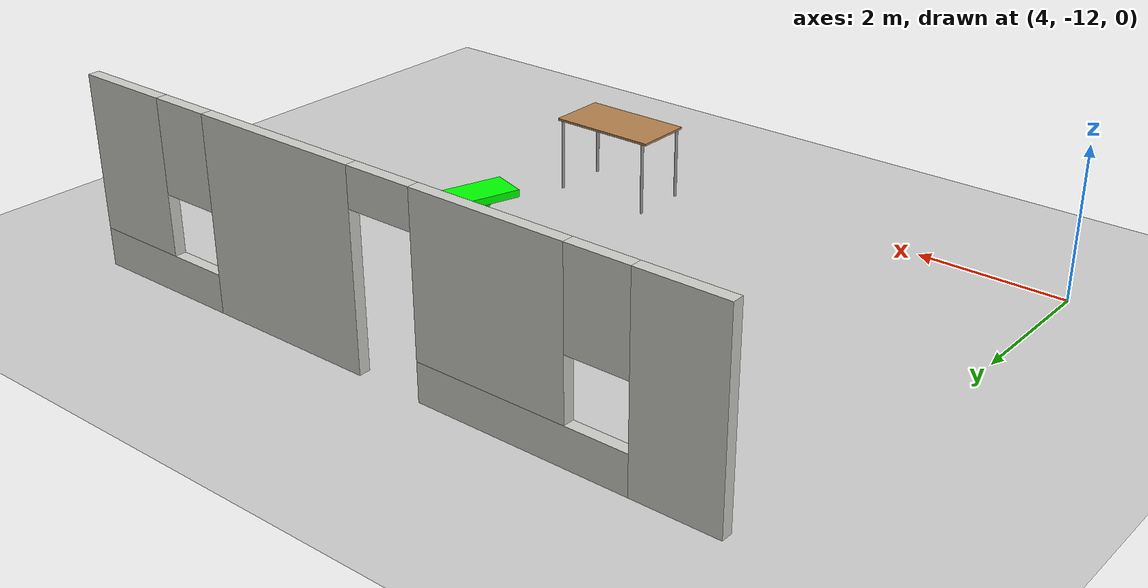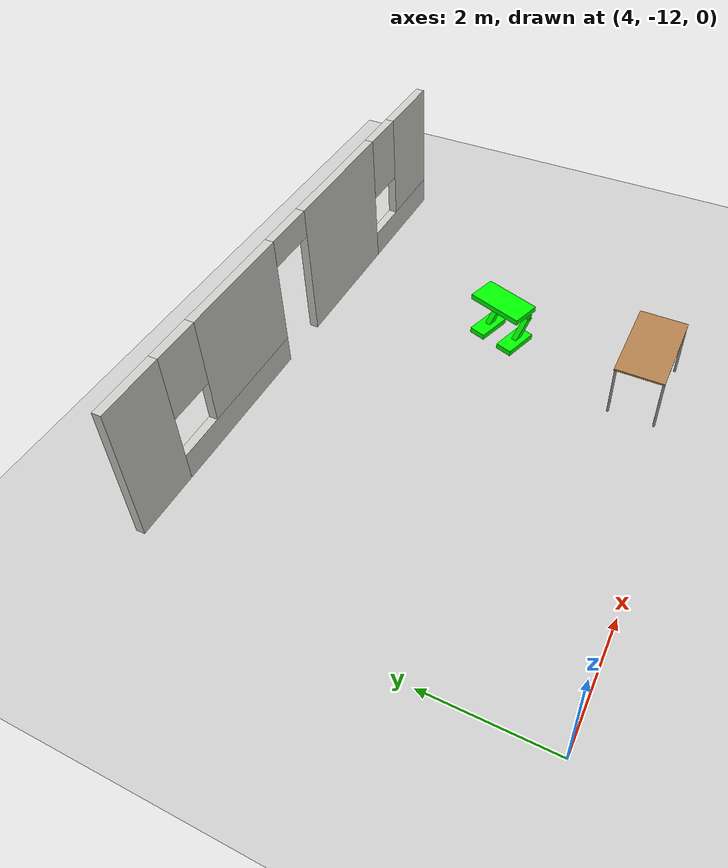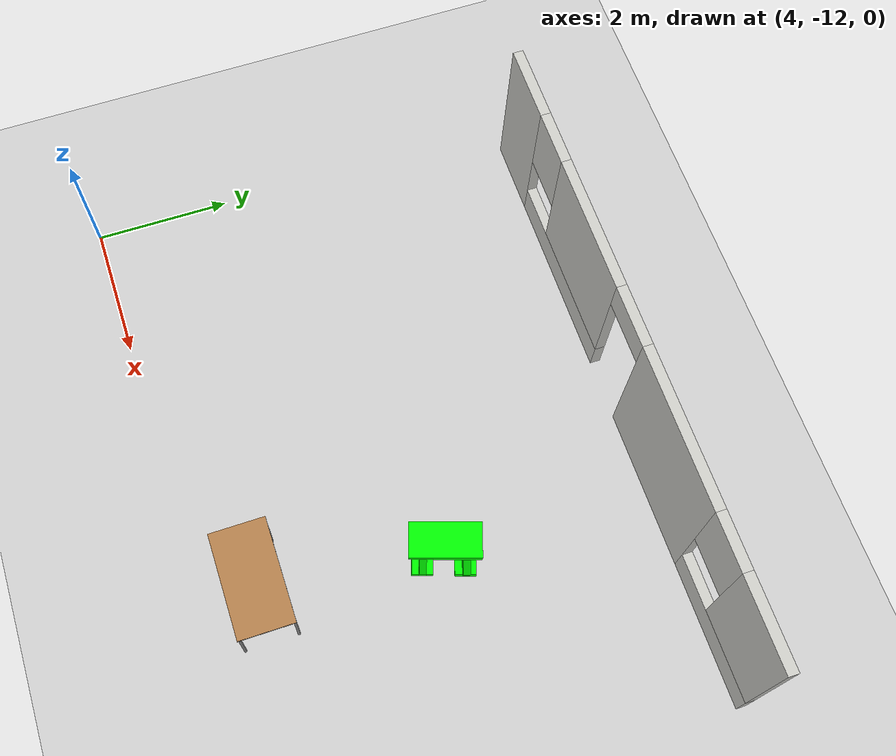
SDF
<sdf version="1.7">
 <world name="default">
  <model name="ground_plane">
   <static>1</static>
   <link name="link">
    <collision name="collision">
     <geometry><plane><normal>0 0 1</normal><size>100 100</size></plane></geometry>
     <surface>
      <contact><collide_bitmask>65535</collide_bitmask></contact>
      <friction><ode><mu>100</mu><mu2>50</mu2></ode></friction>
     </surface>
    </collision>
    <visual name="visual">
     <cast_shadows>0</cast_shadows>
     <geometry><plane><normal>0 0 1</normal><size>100 100</size></plane></geometry>
     <material>
      <script><uri>file://media/materials/scripts/gazebo.material</uri><name>Gazebo/Grey</name></script>
     </material>
    </visual>
   </link>
  </model>
  <model name="newworld">
   <link name="Wall_51">
    <pose>8.84288 -6.35816 0 0 -0 0</pose>
    <visual name="Wall_51_Visual_4">
     <pose>-1.69834 0 1.5 0 -0 0</pose>
     <geometry><box><size>2.02335 0.15 2</size></box></geometry>
     <material>
      <script><uri>file://media/materials/scripts/gazebo.material</uri><name>Gazebo/CeilingTiled</name></script>
      <ambient>0.435294 0.796078 0.67451 1</ambient>
      <shader type="pixel"/>
     </material>
     <meta><layer>0</layer></meta>
    </visual>
    <visual name="Wall_51_Visual_5">
     <pose>-1.69834 0 1.5 0 -0 0</pose>
     <geometry><box><size>2.02335 0.15 2</size></box></geometry>
     <material>
      <script><uri>file://media/materials/scripts/gazebo.material</uri><name>Gazebo/CeilingTiled</name></script>
      <ambient>0.435294 0.796078 0.67451 1</ambient>
      <shader type="pixel"/>
     </material>
     <meta><layer>0</layer></meta>
    </visual>
    <visual name="Wall_51_Visual_9">
     <pose>-0.236664 0 2.25 0 -0 0</pose>
     <geometry><box><size>0.9 0.15 0.5</size></box></geometry>
     <material>
      <script><uri>file://media/materials/scripts/gazebo.material</uri><name>Gazebo/CeilingTiled</name></script>
      <ambient>0.435294 0.796078 0.67451 1</ambient>
      <shader type="pixel"/>
     </material>
     <meta><layer>0</layer></meta>
    </visual>
    <visual name="Wall_51_Visual_2">
     <pose>-2.09834 0 0.25 0 -0 0</pose>
     <geometry><box><size>2.82335 0.15 0.5</size></box></geometry>
     <material>
      <script><uri>file://media/materials/scripts/gazebo.material</uri><name>Gazebo/CeilingTiled</name></script>
      <ambient>0.435294 0.796078 0.67451 1</ambient>
      <shader type="pixel"/>
     </material>
     <meta><layer>0</layer></meta>
    </visual>
    <visual name="Wall_51_Visual_1">
     <pose>1.37624 0 1.25 0 -0 0</pose>
     <geometry><box><size>2.3258 0.15 2.5</size></box></geometry>
     <material>
      <script><uri>file://media/materials/scripts/gazebo.material</uri><name>Gazebo/CeilingTiled</name></script>
      <ambient>0.435294 0.796078 0.67451 1</ambient>
      <shader type="pixel"/>
     </material>
     <meta><layer>0</layer></meta>
    </visual>
    <visual name="Wall_51_Visual_10">
     <pose>-0.236664 0 2.25 0 -0 0</pose>
     <geometry><box><size>0.9 0.15 0.5</size></box></geometry>
     <material>
      <script><uri>file://media/materials/scripts/gazebo.material</uri><name>Gazebo/CeilingTiled</name></script>
      <ambient>0.435294 0.796078 0.67451 1</ambient>
      <shader type="pixel"/>
     </material>
     <meta><layer>0</layer></meta>
    </visual>
    <visual name="Wall_51_Visual_3">
     <pose>3.58207 0 0.25 0 -0 0</pose>
     <geometry><box><size>2.08586 0.15 0.5</size></box></geometry>
     <material>
      <script><uri>file://media/materials/scripts/gazebo.material</uri><name>Gazebo/CeilingTiled</name></script>
      <ambient>0.435294 0.796078 0.67451 1</ambient>
      <shader type="pixel"/>
     </material>
     <meta><layer>0</layer></meta>
    </visual>
    <visual name="Wall_51_Visual_8">
     <pose>2.93914 0 1.9 0 -0 0</pose>
     <geometry><box><size>0.8 0.15 1.2</size></box></geometry>
     <material>
      <script><uri>file://media/materials/scripts/gazebo.material</uri><name>Gazebo/CeilingTiled</name></script>
      <ambient>0.435294 0.796078 0.67451 1</ambient>
      <shader type="pixel"/>
     </material>
     <meta><layer>0</layer></meta>
    </visual>
    <visual name="Wall_51_Visual_0">
     <pose>-4.0675 0 1.25 0 -0 0</pose>
     <geometry><box><size>1.11499 0.15 2.5</size></box></geometry>
     <material>
      <script><uri>file://media/materials/scripts/gazebo.material</uri><name>Gazebo/CeilingTiled</name></script>
      <ambient>0.435294 0.796078 0.67451 1</ambient>
      <shader type="pixel"/>
     </material>
     <meta><layer>0</layer></meta>
    </visual>
    <visual name="Wall_51_Visual_7">
     <pose>-3.11001 0 1.9 0 -0 0</pose>
     <geometry><box><size>0.8 0.15 1.2</size></box></geometry>
     <material>
      <script><uri>file://media/materials/scripts/gazebo.material</uri><name>Gazebo/CeilingTiled</name></script>
      <ambient>0.435294 0.796078 0.67451 1</ambient>
      <shader type="pixel"/>
     </material>
     <meta><layer>0</layer></meta>
    </visual>
    <visual name="Wall_51_Visual_6">
     <pose>3.98207 0 1.5 0 -0 0</pose>
     <geometry><box><size>1.28586 0.15 2</size></box></geometry>
     <material>
      <script><uri>file://media/materials/scripts/gazebo.material</uri><name>Gazebo/CeilingTiled</name></script>
      <ambient>0.435294 0.796078 0.67451 1</ambient>
      <shader type="pixel"/>
     </material>
     <meta><layer>0</layer></meta>
    </visual>
    <collision name="Wall_51_Collision_6">
     <pose>3.98207 0 1.5 0 -0 0</pose>
     <geometry><box><size>1.28586 0.15 2</size></box></geometry>
     <surface>
      <friction>
       <ode><mu>1</mu><mu2>1</mu2><fdir1>0 0 0</fdir1><slip1>0</slip1><slip2>0</slip2></ode>
       <torsional>
        <coefficient>1</coefficient>
        <patch_radius>0</patch_radius>
        <surface_radius>0</surface_radius>
        <use_patch_radius>1</use_patch_radius>
        <ode><slip>0</slip></ode>
       </torsional>
      </friction>
      <bounce><restitution_coefficient>0</restitution_coefficient><threshold>1e+06</threshold></bounce>
      <contact>
       <collide_without_contact>0</collide_without_contact>
       <collide_without_contact_bitmask>1</collide_without_contact_bitmask>
       <collide_bitmask>1</collide_bitmask>
       <ode>
        <soft_cfm>0</soft_cfm>
        <soft_erp>0.2</soft_erp>
        <kp>1e+13</kp>
        <kd>1</kd>
        <max_vel>0.01</max_vel>
        <min_depth>0</min_depth>
       </ode>
       <bullet>
        <split_impulse>1</split_impulse>
        <split_impulse_penetration_threshold>-0.01</split_impulse_penetration_threshold>
        <soft_cfm>0</soft_cfm>
        <soft_erp>0.2</soft_erp>
        <kp>1e+13</kp>
        <kd>1</kd>
       </bullet>
      </contact>
     </surface>
    </collision>
    <collision name="Wall_51_Collision_10">
     <pose>-0.236664 0 2.25 0 -0 0</pose>
     <geometry><box><size>0.9 0.15 0.5</size></box></geometry>
     <surface>
      <friction>
       <ode><mu>1</mu><mu2>1</mu2><fdir1>0 0 0</fdir1><slip1>0</slip1><slip2>0</slip2></ode>
       <torsional>
        <coefficient>1</coefficient>
        <patch_radius>0</patch_radius>
        <surface_radius>0</surface_radius>
        <use_patch_radius>1</use_patch_radius>
        <ode><slip>0</slip></ode>
       </torsional>
      </friction>
      <bounce><restitution_coefficient>0</restitution_coefficient><threshold>1e+06</threshold></bounce>
      <contact>
       <collide_without_contact>0</collide_without_contact>
       <collide_without_contact_bitmask>1</collide_without_contact_bitmask>
       <collide_bitmask>1</collide_bitmask>
       <ode>
        <soft_cfm>0</soft_cfm>
        <soft_erp>0.2</soft_erp>
        <kp>1e+13</kp>
        <kd>1</kd>
        <max_vel>0.01</max_vel>
        <min_depth>0</min_depth>
       </ode>
       <bullet>
        <split_impulse>1</split_impulse>
        <split_impulse_penetration_threshold>-0.01</split_impulse_penetration_threshold>
        <soft_cfm>0</soft_cfm>
        <soft_erp>0.2</soft_erp>
        <kp>1e+13</kp>
        <kd>1</kd>
       </bullet>
      </contact>
     </surface>
    </collision>
    <collision name="Wall_51_Collision_9">
     <pose>-0.236664 0 2.25 0 -0 0</pose>
     <geometry><box><size>0.9 0.15 0.5</size></box></geometry>
     <surface>
      <friction>
       <ode><mu>1</mu><mu2>1</mu2><fdir1>0 0 0</fdir1><slip1>0</slip1><slip2>0</slip2></ode>
       <torsional>
        <coefficient>1</coefficient>
        <patch_radius>0</patch_radius>
        <surface_radius>0</surface_radius>
        <use_patch_radius>1</use_patch_radius>
        <ode><slip>0</slip></ode>
       </torsional>
      </friction>
      <bounce><restitution_coefficient>0</restitution_coefficient><threshold>1e+06</threshold></bounce>
      <contact>
       <collide_without_contact>0</collide_without_contact>
       <collide_without_contact_bitmask>1</collide_without_contact_bitmask>
       <collide_bitmask>1</collide_bitmask>
       <ode>
        <soft_cfm>0</soft_cfm>
        <soft_erp>0.2</soft_erp>
        <kp>1e+13</kp>
        <kd>1</kd>
        <max_vel>0.01</max_vel>
        <min_depth>0</min_depth>
       </ode>
       <bullet>
        <split_impulse>1</split_impulse>
        <split_impulse_penetration_threshold>-0.01</split_impulse_penetration_threshold>
        <soft_cfm>0</soft_cfm>
        <soft_erp>0.2</soft_erp>
        <kp>1e+13</kp>
        <kd>1</kd>
       </bullet>
      </contact>
     </surface>
    </collision>
    <collision name="Wall_51_Collision_5">
     <pose>-1.69834 0 1.5 0 -0 0</pose>
     <geometry><box><size>2.02335 0.15 2</size></box></geometry>
     <surface>
      <friction>
       <ode><mu>1</mu><mu2>1</mu2><fdir1>0 0 0</fdir1><slip1>0</slip1><slip2>0</slip2></ode>
       <torsional>
        <coefficient>1</coefficient>
        <patch_radius>0</patch_radius>
        <surface_radius>0</surface_radius>
        <use_patch_radius>1</use_patch_radius>
        <ode><slip>0</slip></ode>
       </torsional>
      </friction>
      <bounce><restitution_coefficient>0</restitution_coefficient><threshold>1e+06</threshold></bounce>
      <contact>
       <collide_without_contact>0</collide_without_contact>
       <collide_without_contact_bitmask>1</collide_without_contact_bitmask>
       <collide_bitmask>1</collide_bitmask>
       <ode>
        <soft_cfm>0</soft_cfm>
        <soft_erp>0.2</soft_erp>
        <kp>1e+13</kp>
        <kd>1</kd>
        <max_vel>0.01</max_vel>
        <min_depth>0</min_depth>
       </ode>
       <bullet>
        <split_impulse>1</split_impulse>
        <split_impulse_penetration_threshold>-0.01</split_impulse_penetration_threshold>
        <soft_cfm>0</soft_cfm>
        <soft_erp>0.2</soft_erp>
        <kp>1e+13</kp>
        <kd>1</kd>
       </bullet>
      </contact>
     </surface>
    </collision>
    <collision name="Wall_51_Collision_8">
     <pose>2.93914 0 1.9 0 -0 0</pose>
     <geometry><box><size>0.8 0.15 1.2</size></box></geometry>
     <surface>
      <friction>
       <ode><mu>1</mu><mu2>1</mu2><fdir1>0 0 0</fdir1><slip1>0</slip1><slip2>0</slip2></ode>
       <torsional>
        <coefficient>1</coefficient>
        <patch_radius>0</patch_radius>
        <surface_radius>0</surface_radius>
        <use_patch_radius>1</use_patch_radius>
        <ode><slip>0</slip></ode>
       </torsional>
      </friction>
      <bounce><restitution_coefficient>0</restitution_coefficient><threshold>1e+06</threshold></bounce>
      <contact>
       <collide_without_contact>0</collide_without_contact>
       <collide_without_contact_bitmask>1</collide_without_contact_bitmask>
       <collide_bitmask>1</collide_bitmask>
       <ode>
        <soft_cfm>0</soft_cfm>
        <soft_erp>0.2</soft_erp>
        <kp>1e+13</kp>
        <kd>1</kd>
        <max_vel>0.01</max_vel>
        <min_depth>0</min_depth>
       </ode>
       <bullet>
        <split_impulse>1</split_impulse>
        <split_impulse_penetration_threshold>-0.01</split_impulse_penetration_threshold>
        <soft_cfm>0</soft_cfm>
        <soft_erp>0.2</soft_erp>
        <kp>1e+13</kp>
        <kd>1</kd>
       </bullet>
      </contact>
     </surface>
    </collision>
    <collision name="Wall_51_Collision_0">
     <pose>-4.0675 0 1.25 0 -0 0</pose>
     <geometry><box><size>1.11499 0.15 2.5</size></box></geometry>
     <surface>
      <friction>
       <ode><mu>1</mu><mu2>1</mu2><fdir1>0 0 0</fdir1><slip1>0</slip1><slip2>0</slip2></ode>
       <torsional>
        <coefficient>1</coefficient>
        <patch_radius>0</patch_radius>
        <surface_radius>0</surface_radius>
        <use_patch_radius>1</use_patch_radius>
        <ode><slip>0</slip></ode>
       </torsional>
      </friction>
      <bounce><restitution_coefficient>0</restitution_coefficient><threshold>1e+06</threshold></bounce>
      <contact>
       <collide_without_contact>0</collide_without_contact>
       <collide_without_contact_bitmask>1</collide_without_contact_bitmask>
       <collide_bitmask>1</collide_bitmask>
       <ode>
        <soft_cfm>0</soft_cfm>
        <soft_erp>0.2</soft_erp>
        <kp>1e+13</kp>
        <kd>1</kd>
        <max_vel>0.01</max_vel>
        <min_depth>0</min_depth>
       </ode>
       <bullet>
        <split_impulse>1</split_impulse>
        <split_impulse_penetration_threshold>-0.01</split_impulse_penetration_threshold>
        <soft_cfm>0</soft_cfm>
        <soft_erp>0.2</soft_erp>
        <kp>1e+13</kp>
        <kd>1</kd>
       </bullet>
      </contact>
     </surface>
    </collision>
    <collision name="Wall_51_Collision_3">
     <pose>3.58207 0 0.25 0 -0 0</pose>
     <geometry><box><size>2.08586 0.15 0.5</size></box></geometry>
     <surface>
      <friction>
       <ode><mu>1</mu><mu2>1</mu2><fdir1>0 0 0</fdir1><slip1>0</slip1><slip2>0</slip2></ode>
       <torsional>
        <coefficient>1</coefficient>
        <patch_radius>0</patch_radius>
        <surface_radius>0</surface_radius>
        <use_patch_radius>1</use_patch_radius>
        <ode><slip>0</slip></ode>
       </torsional>
      </friction>
      <bounce><restitution_coefficient>0</restitution_coefficient><threshold>1e+06</threshold></bounce>
      <contact>
       <collide_without_contact>0</collide_without_contact>
       <collide_without_contact_bitmask>1</collide_without_contact_bitmask>
       <collide_bitmask>1</collide_bitmask>
       <ode>
        <soft_cfm>0</soft_cfm>
        <soft_erp>0.2</soft_erp>
        <kp>1e+13</kp>
        <kd>1</kd>
        <max_vel>0.01</max_vel>
        <min_depth>0</min_depth>
       </ode>
       <bullet>
        <split_impulse>1</split_impulse>
        <split_impulse_penetration_threshold>-0.01</split_impulse_penetration_threshold>
        <soft_cfm>0</soft_cfm>
        <soft_erp>0.2</soft_erp>
        <kp>1e+13</kp>
        <kd>1</kd>
       </bullet>
      </contact>
     </surface>
    </collision>
    <collision name="Wall_51_Collision_4">
     <pose>-1.69834 0 1.5 0 -0 0</pose>
     <geometry><box><size>2.02335 0.15 2</size></box></geometry>
     <surface>
      <friction>
       <ode><mu>1</mu><mu2>1</mu2><fdir1>0 0 0</fdir1><slip1>0</slip1><slip2>0</slip2></ode>
       <torsional>
        <coefficient>1</coefficient>
        <patch_radius>0</patch_radius>
        <surface_radius>0</surface_radius>
        <use_patch_radius>1</use_patch_radius>
        <ode><slip>0</slip></ode>
       </torsional>
      </friction>
      <bounce><restitution_coefficient>0</restitution_coefficient><threshold>1e+06</threshold></bounce>
      <contact>
       <collide_without_contact>0</collide_without_contact>
       <collide_without_contact_bitmask>1</collide_without_contact_bitmask>
       <collide_bitmask>1</collide_bitmask>
       <ode>
        <soft_cfm>0</soft_cfm>
        <soft_erp>0.2</soft_erp>
        <kp>1e+13</kp>
        <kd>1</kd>
        <max_vel>0.01</max_vel>
        <min_depth>0</min_depth>
       </ode>
       <bullet>
        <split_impulse>1</split_impulse>
        <split_impulse_penetration_threshold>-0.01</split_impulse_penetration_threshold>
        <soft_cfm>0</soft_cfm>
        <soft_erp>0.2</soft_erp>
        <kp>1e+13</kp>
        <kd>1</kd>
       </bullet>
      </contact>
     </surface>
    </collision>
    <collision name="Wall_51_Collision_7">
     <pose>-3.11001 0 1.9 0 -0 0</pose>
     <geometry><box><size>0.8 0.15 1.2</size></box></geometry>
     <surface>
      <friction>
       <ode><mu>1</mu><mu2>1</mu2><fdir1>0 0 0</fdir1><slip1>0</slip1><slip2>0</slip2></ode>
       <torsional>
        <coefficient>1</coefficient>
        <patch_radius>0</patch_radius>
        <surface_radius>0</surface_radius>
        <use_patch_radius>1</use_patch_radius>
        <ode><slip>0</slip></ode>
       </torsional>
      </friction>
      <bounce><restitution_coefficient>0</restitution_coefficient><threshold>1e+06</threshold></bounce>
      <contact>
       <collide_without_contact>0</collide_without_contact>
       <collide_without_contact_bitmask>1</collide_without_contact_bitmask>
       <collide_bitmask>1</collide_bitmask>
       <ode>
        <soft_cfm>0</soft_cfm>
        <soft_erp>0.2</soft_erp>
        <kp>1e+13</kp>
        <kd>1</kd>
        <max_vel>0.01</max_vel>
        <min_depth>0</min_depth>
       </ode>
       <bullet>
        <split_impulse>1</split_impulse>
        <split_impulse_penetration_threshold>-0.01</split_impulse_penetration_threshold>
        <soft_cfm>0</soft_cfm>
        <soft_erp>0.2</soft_erp>
        <kp>1e+13</kp>
        <kd>1</kd>
       </bullet>
      </contact>
     </surface>
    </collision>
    <collision name="Wall_51_Collision_1">
     <pose>1.37624 0 1.25 0 -0 0</pose>
     <geometry><box><size>2.3258 0.15 2.5</size></box></geometry>
     <surface>
      <friction>
       <ode><mu>1</mu><mu2>1</mu2><fdir1>0 0 0</fdir1><slip1>0</slip1><slip2>0</slip2></ode>
       <torsional>
        <coefficient>1</coefficient>
        <patch_radius>0</patch_radius>
        <surface_radius>0</surface_radius>
        <use_patch_radius>1</use_patch_radius>
        <ode><slip>0</slip></ode>
       </torsional>
      </friction>
      <bounce><restitution_coefficient>0</restitution_coefficient><threshold>1e+06</threshold></bounce>
      <contact>
       <collide_without_contact>0</collide_without_contact>
       <collide_without_contact_bitmask>1</collide_without_contact_bitmask>
       <collide_bitmask>1</collide_bitmask>
       <ode>
        <soft_cfm>0</soft_cfm>
        <soft_erp>0.2</soft_erp>
        <kp>1e+13</kp>
        <kd>1</kd>
        <max_vel>0.01</max_vel>
        <min_depth>0</min_depth>
       </ode>
       <bullet>
        <split_impulse>1</split_impulse>
        <split_impulse_penetration_threshold>-0.01</split_impulse_penetration_threshold>
        <soft_cfm>0</soft_cfm>
        <soft_erp>0.2</soft_erp>
        <kp>1e+13</kp>
        <kd>1</kd>
       </bullet>
      </contact>
     </surface>
    </collision>
    <collision name="Wall_51_Collision_2">
     <pose>-2.09834 0 0.25 0 -0 0</pose>
     <geometry><box><size>2.82335 0.15 0.5</size></box></geometry>
     <surface>
      <friction>
       <ode><mu>1</mu><mu2>1</mu2><fdir1>0 0 0</fdir1><slip1>0</slip1><slip2>0</slip2></ode>
       <torsional>
        <coefficient>1</coefficient>
        <patch_radius>0</patch_radius>
        <surface_radius>0</surface_radius>
        <use_patch_radius>1</use_patch_radius>
        <ode><slip>0</slip></ode>
       </torsional>
      </friction>
      <bounce><restitution_coefficient>0</restitution_coefficient><threshold>1e+06</threshold></bounce>
      <contact>
       <collide_without_contact>0</collide_without_contact>
       <collide_without_contact_bitmask>1</collide_without_contact_bitmask>
       <collide_bitmask>1</collide_bitmask>
       <ode>
        <soft_cfm>0</soft_cfm>
        <soft_erp>0.2</soft_erp>
        <kp>1e+13</kp>
        <kd>1</kd>
        <max_vel>0.01</max_vel>
        <min_depth>0</min_depth>
       </ode>
       <bullet>
        <split_impulse>1</split_impulse>
        <split_impulse_penetration_threshold>-0.01</split_impulse_penetration_threshold>
        <soft_cfm>0</soft_cfm>
        <soft_erp>0.2</soft_erp>
        <kp>1e+13</kp>
        <kd>1</kd>
       </bullet>
      </contact>
     </surface>
    </collision>
   </link>
   <static>1</static>
   <pose>0.193711 0.903984 0 0 -0 0</pose>
  </model>
  <model name="table_0">
   <static>1</static>
   <link name="link">
    <collision name="surface">
     <pose>0 0 1 0 -0 0</pose>
     <geometry><box><size>1.5 0.8 0.03</size></box></geometry>
     <surface><friction><ode><mu>0.6</mu><mu2>0.6</mu2></ode></friction></surface>
    </collision>
    <visual name="visual1">
     <pose>0 0 1 0 -0 0</pose>
     <geometry><box><size>1.5 0.8 0.03</size></box></geometry>
     <material>
      <script><uri>file://media/materials/scripts/gazebo.material</uri><name>Gazebo/Wood</name></script>
     </material>
    </visual>
    <collision name="front_left_leg">
     <pose>0.68 0.38 0.5 0 -0 0</pose>
     <geometry><cylinder><radius>0.02</radius><length>1</length></cylinder></geometry>
    </collision>
    <visual name="front_left_leg">
     <pose>0.68 0.38 0.5 0 -0 0</pose>
     <geometry><cylinder><radius>0.02</radius><length>1</length></cylinder></geometry>
     <material>
      <script><uri>file://media/materials/scripts/gazebo.material</uri><name>Gazebo/Grey</name></script>
     </material>
    </visual>
    <collision name="front_right_leg">
     <pose>0.68 -0.38 0.5 0 -0 0</pose>
     <geometry><cylinder><radius>0.02</radius><length>1</length></cylinder></geometry>
    </collision>
    <visual name="front_right_leg">
     <pose>0.68 -0.38 0.5 0 -0 0</pose>
     <geometry><cylinder><radius>0.02</radius><length>1</length></cylinder></geometry>
     <material>
      <script><uri>file://media/materials/scripts/gazebo.material</uri><name>Gazebo/Grey</name></script>
     </material>
    </visual>
    <collision name="back_right_leg">
     <pose>-0.68 -0.38 0.5 0 -0 0</pose>
     <geometry><cylinder><radius>0.02</radius><length>1</length></cylinder></geometry>
    </collision>
    <visual name="back_right_leg">
     <pose>-0.68 -0.38 0.5 0 -0 0</pose>
     <geometry><cylinder><radius>0.02</radius><length>1</length></cylinder></geometry>
     <material>
      <script><uri>file://media/materials/scripts/gazebo.material</uri><name>Gazebo/Grey</name></script>
     </material>
    </visual>
    <collision name="back_left_leg">
     <pose>-0.68 0.38 0.5 0 -0 0</pose>
     <geometry><cylinder><radius>0.02</radius><length>1</length></cylinder></geometry>
    </collision>
    <visual name="back_left_leg">
     <pose>-0.68 0.38 0.5 0 -0 0</pose>
     <geometry><cylinder><radius>0.02</radius><length>1</length></cylinder></geometry>
     <material>
      <script><uri>file://media/materials/scripts/gazebo.material</uri><name>Gazebo/Grey</name></script>
     </material>
    </visual>
   </link>
   <pose>10.1925 -11.1768 0 0 -0 0</pose>
  </model>
  <model name="HumanoidRobot_1">
   <model name="HumanoidRobot">
    <link name="link_0">
     <pose>-0.012657 0.075 0.964637 0 -0 0</pose>
     <inertial>
      <mass>1</mass>
      <inertia>
       <ixx>0.166667</ixx>
       <ixy>0</ixy>
       <ixz>0</ixz>
       <iyy>0.166667</iyy>
       <iyz>0</iyz>
       <izz>0.166667</izz>
      </inertia>
     </inertial>
     <visual name="visual">
      <geometry><box><size>0.5 1 0.1</size></box></geometry>
      <material>
       <lighting>1</lighting>
       <script><uri>file://media/materials/scripts/gazebo.material</uri><name>Gazebo/Grey</name></script>
       <shader type="pixel"><normal_map>__default__</normal_map></shader>
       <ambient>0 1 0 1</ambient>
       <diffuse>0.1 0.1 0.1 1</diffuse>
       <specular>0 0 0 1</specular>
       <emissive>0 0 0 1</emissive>
      </material>
     </visual>
     <collision name="collision">
      <geometry><box><size>0.5 1 0.1</size></box></geometry>
      <surface>
       <friction>
        <ode><mu>1</mu><mu2>1</mu2><fdir1>0 0 0</fdir1><slip1>0</slip1><slip2>0</slip2></ode>
        <torsional>
         <coefficient>1</coefficient>
         <patch_radius>0</patch_radius>
         <surface_radius>0</surface_radius>
         <use_patch_radius>1</use_patch_radius>
         <ode><slip>0</slip></ode>
        </torsional>
       </friction>
       <bounce><restitution_coefficient>0</restitution_coefficient><threshold>1e+06</threshold></bounce>
       <contact>
        <collide_without_contact>0</collide_without_contact>
        <collide_without_contact_bitmask>1</collide_without_contact_bitmask>
        <collide_bitmask>1</collide_bitmask>
        <ode>
         <soft_cfm>0</soft_cfm>
         <soft_erp>0.2</soft_erp>
         <kp>1e+13</kp>
         <kd>1</kd>
         <max_vel>0.01</max_vel>
         <min_depth>0</min_depth>
        </ode>
        <bullet>
         <split_impulse>1</split_impulse>
         <split_impulse_penetration_threshold>-0.01</split_impulse_penetration_threshold>
         <soft_cfm>0</soft_cfm>
         <soft_erp>0.2</soft_erp>
         <kp>1e+13</kp>
         <kd>1</kd>
        </bullet>
       </contact>
      </surface>
     </collision>
    </link>
    <link name="link_2">
     <pose>-0.012657 0.375 0.964637 0 -0.785 0</pose>
     <inertial>
      <mass>1</mass>
      <inertia>
       <ixx>0.166667</ixx>
       <ixy>0</ixy>
       <ixz>0</ixz>
       <iyy>0.166667</iyy>
       <iyz>0</iyz>
       <izz>0.166667</izz>
      </inertia>
     </inertial>
     <visual name="visual">
      <pose>0 0 -0.25 0 -0 0</pose>
      <geometry><box><size>0.1 0.1 0.5</size></box></geometry>
      <material>
       <lighting>1</lighting>
       <script><uri>file://media/materials/scripts/gazebo.material</uri><name>Gazebo/Grey</name></script>
       <shader type="pixel"><normal_map>__default__</normal_map></shader>
       <ambient>0 1 0 1</ambient>
       <diffuse>0.1 0.1 0.1 1</diffuse>
       <specular>0 0 0 1</specular>
       <emissive>0 0 0 1</emissive>
      </material>
     </visual>
     <collision name="collision">
      <pose>0 0 -0.25 0 -0 0</pose>
      <geometry><box><size>0.1 0.1 0.5</size></box></geometry>
      <surface>
       <friction>
        <ode><mu>1</mu><mu2>1</mu2><fdir1>0 0 0</fdir1><slip1>0</slip1><slip2>0</slip2></ode>
        <torsional>
         <coefficient>1</coefficient>
         <patch_radius>0</patch_radius>
         <surface_radius>0</surface_radius>
         <use_patch_radius>1</use_patch_radius>
         <ode><slip>0</slip></ode>
        </torsional>
       </friction>
       <bounce><restitution_coefficient>0</restitution_coefficient><threshold>1e+06</threshold></bounce>
       <contact>
        <collide_without_contact>0</collide_without_contact>
        <collide_without_contact_bitmask>1</collide_without_contact_bitmask>
        <collide_bitmask>1</collide_bitmask>
        <ode>
         <soft_cfm>0</soft_cfm>
         <soft_erp>0.2</soft_erp>
         <kp>1e+13</kp>
         <kd>1</kd>
         <max_vel>0.01</max_vel>
         <min_depth>0</min_depth>
        </ode>
        <bullet>
         <split_impulse>1</split_impulse>
         <split_impulse_penetration_threshold>-0.01</split_impulse_penetration_threshold>
         <soft_cfm>0</soft_cfm>
         <soft_erp>0.2</soft_erp>
         <kp>1e+13</kp>
         <kd>1</kd>
        </bullet>
       </contact>
      </surface>
     </collision>
    </link>
    <link name="link_2_clone">
     <pose>0.340755 0.375 0.610943 0 0.7857 0</pose>
     <inertial>
      <mass>1</mass>
      <inertia>
       <ixx>0.166667</ixx>
       <ixy>0</ixy>
       <ixz>0</ixz>
       <iyy>0.166667</iyy>
       <iyz>0</iyz>
       <izz>0.166667</izz>
      </inertia>
     </inertial>
     <visual name="visual">
      <pose>0 0 -0.25 0 -0 0</pose>
      <geometry><box><size>0.1 0.1 0.5</size></box></geometry>
      <material>
       <lighting>1</lighting>
       <script><uri>file://media/materials/scripts/gazebo.material</uri><name>Gazebo/Grey</name></script>
       <shader type="pixel"><normal_map>__default__</normal_map></shader>
       <ambient>0 1 0 1</ambient>
       <diffuse>0.1 0.1 0.1 1</diffuse>
       <specular>0 0 0 1</specular>
       <emissive>0 0 0 1</emissive>
      </material>
     </visual>
     <collision name="collision">
      <pose>0 0 -0.25 0 -0 0</pose>
      <geometry><box><size>0.1 0.1 0.5</size></box></geometry>
      <surface>
       <friction>
        <ode><mu>1</mu><mu2>1</mu2><fdir1>0 0 0</fdir1><slip1>0</slip1><slip2>0</slip2></ode>
        <torsional>
         <coefficient>1</coefficient>
         <patch_radius>0</patch_radius>
         <surface_radius>0</surface_radius>
         <use_patch_radius>1</use_patch_radius>
         <ode><slip>0</slip></ode>
        </torsional>
       </friction>
       <bounce><restitution_coefficient>0</restitution_coefficient><threshold>1e+06</threshold></bounce>
       <contact>
        <collide_without_contact>0</collide_without_contact>
        <collide_without_contact_bitmask>1</collide_without_contact_bitmask>
        <collide_bitmask>1</collide_bitmask>
        <ode>
         <soft_cfm>0</soft_cfm>
         <soft_erp>0.2</soft_erp>
         <kp>1e+13</kp>
         <kd>1</kd>
         <max_vel>0.01</max_vel>
         <min_depth>0</min_depth>
        </ode>
        <bullet>
         <split_impulse>1</split_impulse>
         <split_impulse_penetration_threshold>-0.01</split_impulse_penetration_threshold>
         <soft_cfm>0</soft_cfm>
         <soft_erp>0.2</soft_erp>
         <kp>1e+13</kp>
         <kd>1</kd>
        </bullet>
       </contact>
      </surface>
     </collision>
    </link>
    <link name="link_2_clone_clone">
     <pose>-0.012657 -0.225 0.964637 0 -0.7857 0</pose>
     <inertial>
      <mass>1</mass>
      <inertia>
       <ixx>0.166667</ixx>
       <ixy>0</ixy>
       <ixz>0</ixz>
       <iyy>0.166667</iyy>
       <iyz>0</iyz>
       <izz>0.166667</izz>
      </inertia>
     </inertial>
     <visual name="visual">
      <pose>0 0 -0.25 0 -0 0</pose>
      <geometry><box><size>0.1 0.1 0.5</size></box></geometry>
      <material>
       <lighting>1</lighting>
       <script><uri>file://media/materials/scripts/gazebo.material</uri><name>Gazebo/Grey</name></script>
       <shader type="pixel"><normal_map>__default__</normal_map></shader>
       <ambient>0 1 0 1</ambient>
       <diffuse>0.1 0.1 0.1 1</diffuse>
       <specular>0 0 0 1</specular>
       <emissive>0 0 0 1</emissive>
      </material>
     </visual>
     <collision name="collision">
      <pose>0 0 -0.25 0 -0 0</pose>
      <geometry><box><size>0.1 0.1 0.5</size></box></geometry>
      <surface>
       <friction>
        <ode><mu>1</mu><mu2>1</mu2><fdir1>0 0 0</fdir1><slip1>0</slip1><slip2>0</slip2></ode>
        <torsional>
         <coefficient>1</coefficient>
         <patch_radius>0</patch_radius>
         <surface_radius>0</surface_radius>
         <use_patch_radius>1</use_patch_radius>
         <ode><slip>0</slip></ode>
        </torsional>
       </friction>
       <bounce><restitution_coefficient>0</restitution_coefficient><threshold>1e+06</threshold></bounce>
       <contact>
        <collide_without_contact>0</collide_without_contact>
        <collide_without_contact_bitmask>1</collide_without_contact_bitmask>
        <collide_bitmask>1</collide_bitmask>
        <ode>
         <soft_cfm>0</soft_cfm>
         <soft_erp>0.2</soft_erp>
         <kp>1e+13</kp>
         <kd>1</kd>
         <max_vel>0.01</max_vel>
         <min_depth>0</min_depth>
        </ode>
        <bullet>
         <split_impulse>1</split_impulse>
         <split_impulse_penetration_threshold>-0.01</split_impulse_penetration_threshold>
         <soft_cfm>0</soft_cfm>
         <soft_erp>0.2</soft_erp>
         <kp>1e+13</kp>
         <kd>1</kd>
        </bullet>
       </contact>
      </surface>
     </collision>
    </link>
    <link name="link_2_clone_clone_clone">
     <pose>0.341003 -0.225 0.611191 0 0.785 0</pose>
     <inertial>
      <mass>1</mass>
      <inertia>
       <ixx>0.166667</ixx>
       <ixy>0</ixy>
       <ixz>0</ixz>
       <iyy>0.166667</iyy>
       <iyz>0</iyz>
       <izz>0.166667</izz>
      </inertia>
     </inertial>
     <visual name="visual">
      <pose>0 0 -0.25 0 -0 0</pose>
      <geometry><box><size>0.1 0.1 0.5</size></box></geometry>
      <material>
       <lighting>1</lighting>
       <script><uri>file://media/materials/scripts/gazebo.material</uri><name>Gazebo/Grey</name></script>
       <shader type="pixel"><normal_map>__default__</normal_map></shader>
       <ambient>0 1 0 1</ambient>
       <diffuse>0.1 0.1 0.1 1</diffuse>
       <specular>0 0 0 1</specular>
       <emissive>0 0 0 1</emissive>
      </material>
     </visual>
     <collision name="collision">
      <pose>0 0 -0.25 0 -0 0</pose>
      <geometry><box><size>0.1 0.1 0.5</size></box></geometry>
      <surface>
       <friction>
        <ode><mu>1</mu><mu2>1</mu2><fdir1>0 0 0</fdir1><slip1>0</slip1><slip2>0</slip2></ode>
        <torsional>
         <coefficient>1</coefficient>
         <patch_radius>0</patch_radius>
         <surface_radius>0</surface_radius>
         <use_patch_radius>1</use_patch_radius>
         <ode><slip>0</slip></ode>
        </torsional>
       </friction>
       <bounce><restitution_coefficient>0</restitution_coefficient><threshold>1e+06</threshold></bounce>
       <contact>
        <collide_without_contact>0</collide_without_contact>
        <collide_without_contact_bitmask>1</collide_without_contact_bitmask>
        <collide_bitmask>1</collide_bitmask>
        <ode>
         <soft_cfm>0</soft_cfm>
         <soft_erp>0.2</soft_erp>
         <kp>1e+13</kp>
         <kd>1</kd>
         <max_vel>0.01</max_vel>
         <min_depth>0</min_depth>
        </ode>
        <bullet>
         <split_impulse>1</split_impulse>
         <split_impulse_penetration_threshold>-0.01</split_impulse_penetration_threshold>
         <soft_cfm>0</soft_cfm>
         <soft_erp>0.2</soft_erp>
         <kp>1e+13</kp>
         <kd>1</kd>
        </bullet>
       </contact>
      </surface>
     </collision>
    </link>
    <link name="link_3">
     <pose>-0.01241 -0.225 0.257496 0 -0 0</pose>
     <inertial>
      <mass>1</mass>
      <inertia>
       <ixx>0.166667</ixx>
       <ixy>0</ixy>
       <ixz>0</ixz>
       <iyy>0.166667</iyy>
       <iyz>0</iyz>
       <izz>0.166667</izz>
      </inertia>
     </inertial>
     <visual name="visual">
      <geometry><box><size>0.6 0.3 0.1</size></box></geometry>
      <material>
       <lighting>1</lighting>
       <script><uri>file://media/materials/scripts/gazebo.material</uri><name>Gazebo/Grey</name></script>
       <shader type="pixel"><normal_map>__default__</normal_map></shader>
       <ambient>0 1 0 1</ambient>
       <diffuse>0.1 0.1 0.1 1</diffuse>
       <specular>0 0 0 1</specular>
       <emissive>0 0 0 1</emissive>
      </material>
     </visual>
     <collision name="collision">
      <geometry><box><size>0.6 0.3 0.1</size></box></geometry>
      <surface>
       <friction>
        <ode><mu>1</mu><mu2>1</mu2><fdir1>0 0 0</fdir1><slip1>0</slip1><slip2>0</slip2></ode>
        <torsional>
         <coefficient>1</coefficient>
         <patch_radius>0</patch_radius>
         <surface_radius>0</surface_radius>
         <use_patch_radius>1</use_patch_radius>
         <ode><slip>0</slip></ode>
        </torsional>
       </friction>
       <bounce><restitution_coefficient>0</restitution_coefficient><threshold>1e+06</threshold></bounce>
       <contact>
        <collide_without_contact>0</collide_without_contact>
        <collide_without_contact_bitmask>1</collide_without_contact_bitmask>
        <collide_bitmask>1</collide_bitmask>
        <ode>
         <soft_cfm>0</soft_cfm>
         <soft_erp>0.2</soft_erp>
         <kp>1e+13</kp>
         <kd>1</kd>
         <max_vel>0.01</max_vel>
         <min_depth>0</min_depth>
        </ode>
        <bullet>
         <split_impulse>1</split_impulse>
         <split_impulse_penetration_threshold>-0.01</split_impulse_penetration_threshold>
         <soft_cfm>0</soft_cfm>
         <soft_erp>0.2</soft_erp>
         <kp>1e+13</kp>
         <kd>1</kd>
        </bullet>
       </contact>
      </surface>
     </collision>
    </link>
    <link name="link_3_clone">
     <pose>-0.012905 0.375 0.257496 0 -0 0</pose>
     <inertial>
      <mass>1</mass>
      <inertia>
       <ixx>0.166667</ixx>
       <ixy>0</ixy>
       <ixz>0</ixz>
       <iyy>0.166667</iyy>
       <iyz>0</iyz>
       <izz>0.166667</izz>
      </inertia>
     </inertial>
     <visual name="visual">
      <geometry><box><size>0.6 0.3 0.1</size></box></geometry>
      <material>
       <lighting>1</lighting>
       <script><uri>file://media/materials/scripts/gazebo.material</uri><name>Gazebo/Grey</name></script>
       <shader type="pixel"><normal_map>__default__</normal_map></shader>
       <ambient>0 1 0 1</ambient>
       <diffuse>0.1 0.1 0.1 1</diffuse>
       <specular>0 0 0 1</specular>
       <emissive>0 0 0 1</emissive>
      </material>
     </visual>
     <collision name="collision">
      <geometry><box><size>0.6 0.3 0.1</size></box></geometry>
      <surface>
       <friction>
        <ode><mu>1</mu><mu2>1</mu2><fdir1>0 0 0</fdir1><slip1>0</slip1><slip2>0</slip2></ode>
        <torsional>
         <coefficient>1</coefficient>
         <patch_radius>0</patch_radius>
         <surface_radius>0</surface_radius>
         <use_patch_radius>1</use_patch_radius>
         <ode><slip>0</slip></ode>
        </torsional>
       </friction>
       <bounce><restitution_coefficient>0</restitution_coefficient><threshold>1e+06</threshold></bounce>
       <contact>
        <collide_without_contact>0</collide_without_contact>
        <collide_without_contact_bitmask>1</collide_without_contact_bitmask>
        <collide_bitmask>1</collide_bitmask>
        <ode>
         <soft_cfm>0</soft_cfm>
         <soft_erp>0.2</soft_erp>
         <kp>1e+13</kp>
         <kd>1</kd>
         <max_vel>0.01</max_vel>
         <min_depth>0</min_depth>
        </ode>
        <bullet>
         <split_impulse>1</split_impulse>
         <split_impulse_penetration_threshold>-0.01</split_impulse_penetration_threshold>
         <soft_cfm>0</soft_cfm>
         <soft_erp>0.2</soft_erp>
         <kp>1e+13</kp>
         <kd>1</kd>
        </bullet>
       </contact>
      </surface>
     </collision>
    </link>
    <joint name="link_0_JOINT_0" type="fixed">
     <parent>link_0</parent>
     <child>link_2</child>
     <axis>
      <xyz>0 1 0</xyz>
      <limit>
       <lower>-1.79769e+308</lower>
       <upper>1.79769e+308</upper>
       <effort>-1</effort>
       <velocity>-1</velocity>
      </limit>
      <dynamics>
       <spring_reference>0</spring_reference>
       <spring_stiffness>0</spring_stiffness>
       <damping>0</damping>
      </dynamics>
     </axis>
     <physics>
      <ode><limit><cfm>0</cfm><erp>0.2</erp></limit><suspension><cfm>0</cfm><erp>0.2</erp></suspension></ode>
     </physics>
    </joint>
    <joint name="link_0_JOINT_2" type="fixed">
     <parent>link_0</parent>
     <child>link_2_clone_clone</child>
     <axis>
      <xyz>0 1 0</xyz>
      <limit>
       <lower>-1.79769e+308</lower>
       <upper>1.79769e+308</upper>
       <effort>-1</effort>
       <velocity>-1</velocity>
      </limit>
      <dynamics>
       <spring_reference>0</spring_reference>
       <spring_stiffness>0</spring_stiffness>
       <damping>0</damping>
       <friction>0</friction>
      </dynamics>
     </axis>
     <physics>
      <ode><limit><cfm>0</cfm><erp>0.2</erp></limit><suspension><cfm>0</cfm><erp>0.2</erp></suspension></ode>
     </physics>
    </joint>
    <joint name="link_2_JOINT_1" type="fixed">
     <parent>link_2</parent>
     <child>link_2_clone</child>
     <axis>
      <xyz>0 1 0</xyz>
      <limit>
       <lower>-1.79769e+308</lower>
       <upper>1.79769e+308</upper>
       <effort>-1</effort>
       <velocity>-1</velocity>
      </limit>
      <dynamics>
       <spring_reference>0</spring_reference>
       <spring_stiffness>0</spring_stiffness>
       <damping>0</damping>
       <friction>0</friction>
      </dynamics>
     </axis>
     <physics>
      <ode><limit><cfm>0</cfm><erp>0.2</erp></limit><suspension><cfm>0</cfm><erp>0.2</erp></suspension></ode>
     </physics>
    </joint>
    <joint name="link_2_clone_JOINT_5" type="fixed">
     <parent>link_2_clone</parent>
     <child>link_3_clone</child>
     <axis>
      <xyz>0 1 0</xyz>
      <limit>
       <lower>-1.79769e+308</lower>
       <upper>1.79769e+308</upper>
       <effort>-1</effort>
       <velocity>-1</velocity>
      </limit>
      <dynamics>
       <spring_reference>0</spring_reference>
       <spring_stiffness>0</spring_stiffness>
       <damping>0</damping>
       <friction>0</friction>
      </dynamics>
     </axis>
     <physics>
      <ode><limit><cfm>0</cfm><erp>0.2</erp></limit><suspension><cfm>0</cfm><erp>0.2</erp></suspension></ode>
     </physics>
    </joint>
    <joint name="link_2_clone_clone_JOINT_3" type="fixed">
     <parent>link_2_clone_clone</parent>
     <child>link_2_clone_clone_clone</child>
     <axis>
      <xyz>0 1 0</xyz>
      <limit>
       <lower>-1.79769e+308</lower>
       <upper>1.79769e+308</upper>
       <effort>-1</effort>
       <velocity>-1</velocity>
      </limit>
      <dynamics>
       <spring_reference>0</spring_reference>
       <spring_stiffness>0</spring_stiffness>
       <damping>0</damping>
      </dynamics>
     </axis>
     <physics>
      <ode><limit><cfm>0</cfm><erp>0.2</erp></limit><suspension><cfm>0</cfm><erp>0.2</erp></suspension></ode>
     </physics>
    </joint>
    <joint name="link_2_clone_clone_clone_JOINT_4" type="fixed">
     <parent>link_2_clone_clone_clone</parent>
     <child>link_3</child>
     <axis>
      <xyz>0 1 0</xyz>
      <limit>
       <lower>-1.79769e+308</lower>
       <upper>1.79769e+308</upper>
       <effort>-1</effort>
       <velocity>-1</velocity>
      </limit>
      <dynamics>
       <spring_reference>0</spring_reference>
       <spring_stiffness>0</spring_stiffness>
       <damping>0</damping>
      </dynamics>
     </axis>
     <physics>
      <ode><limit><cfm>0</cfm><erp>0.2</erp></limit><suspension><cfm>0</cfm><erp>0.2</erp></suspension></ode>
     </physics>
    </joint>
    <static>0</static>
   </model>
   <static>1</static>
   <pose>10.4354 -8.6389 -0.207497 4e-06 1e-06 -0.319974</pose>
  </model>
 </world>
</sdf>
